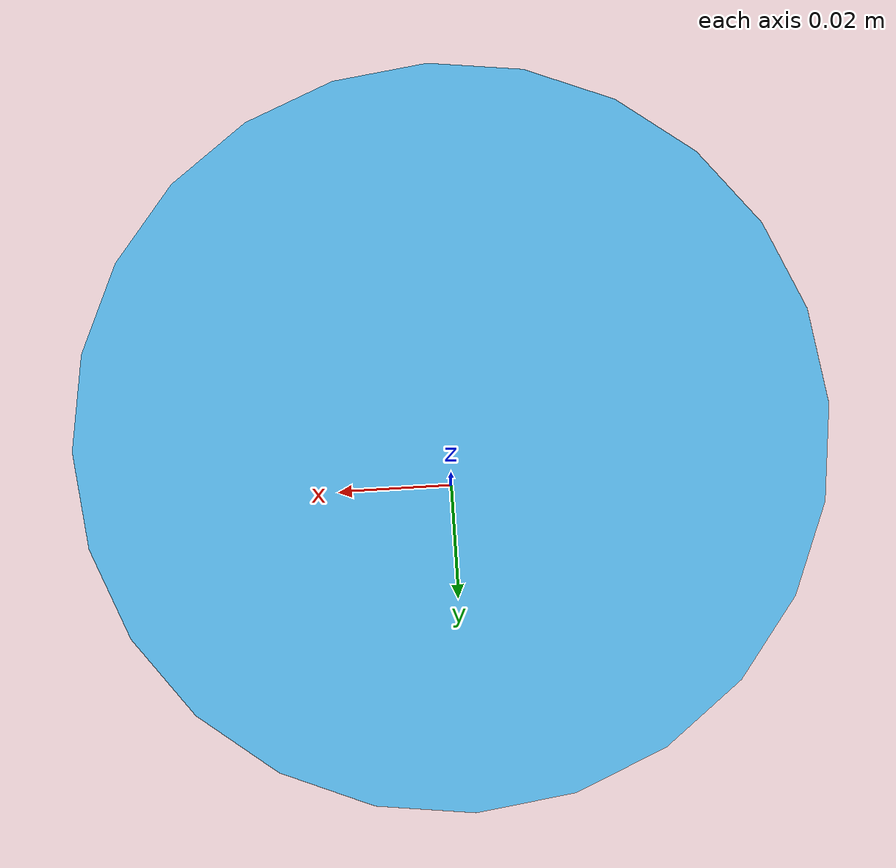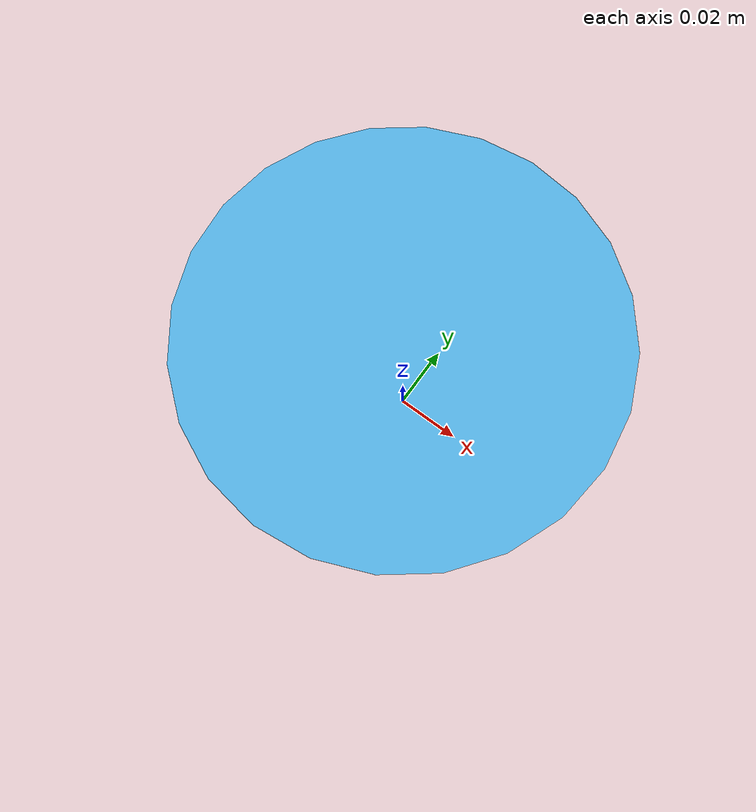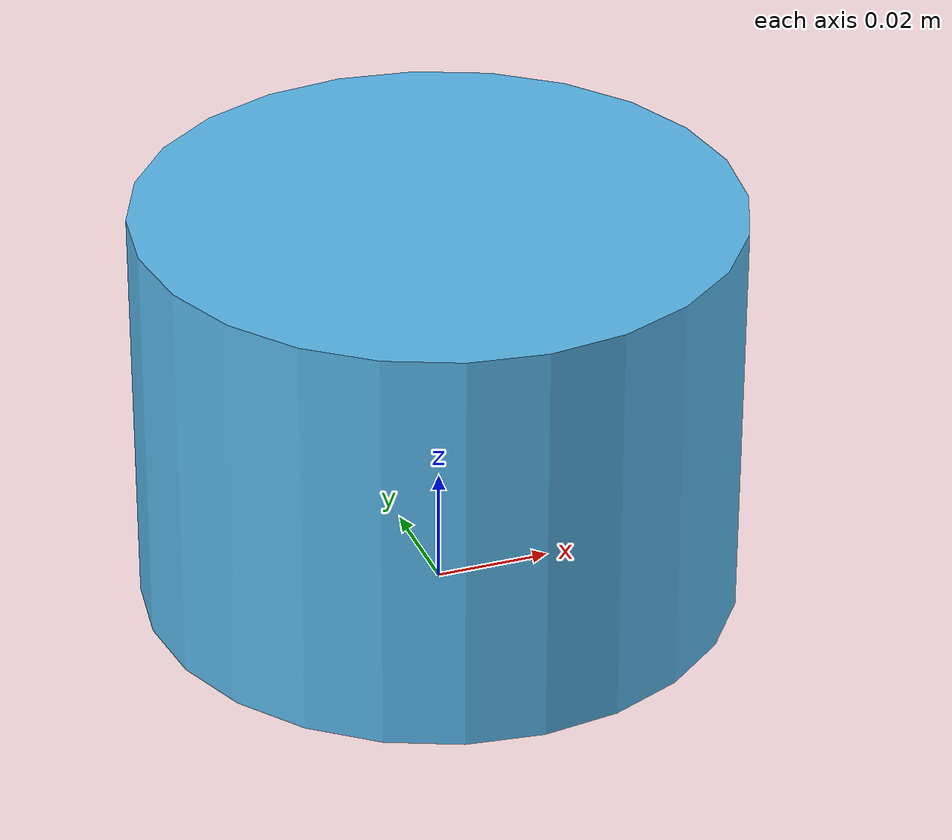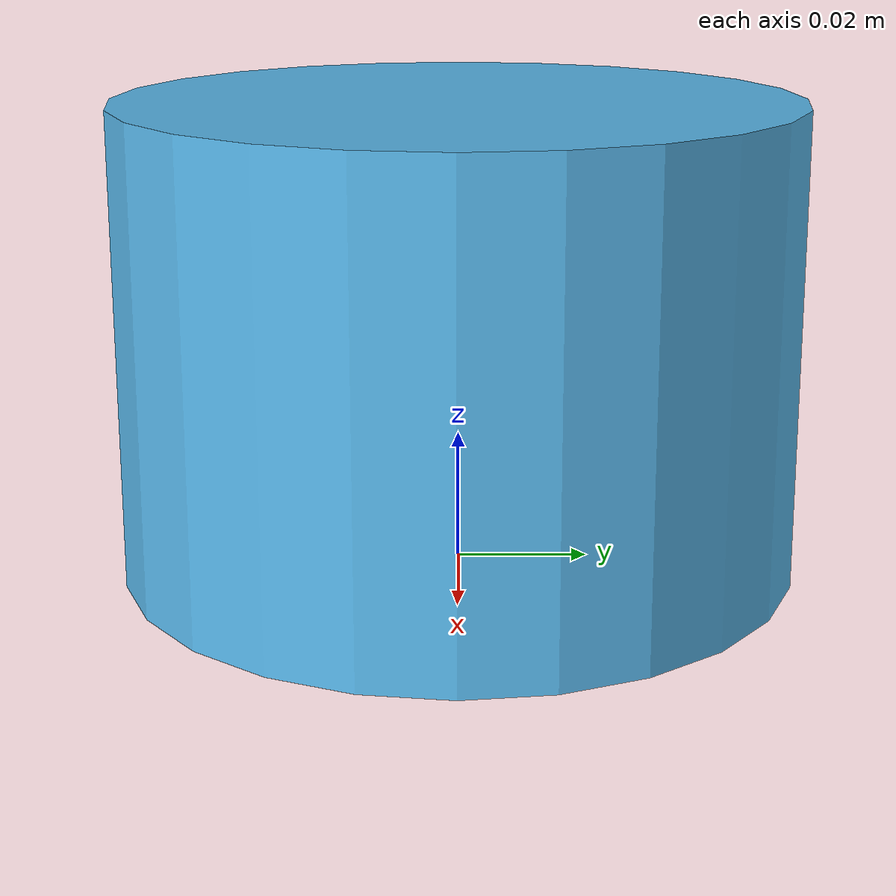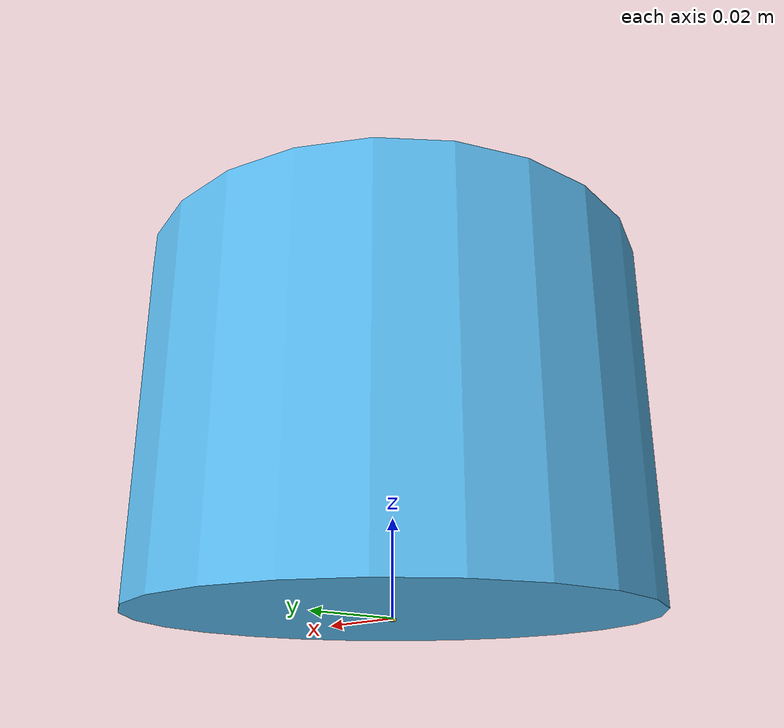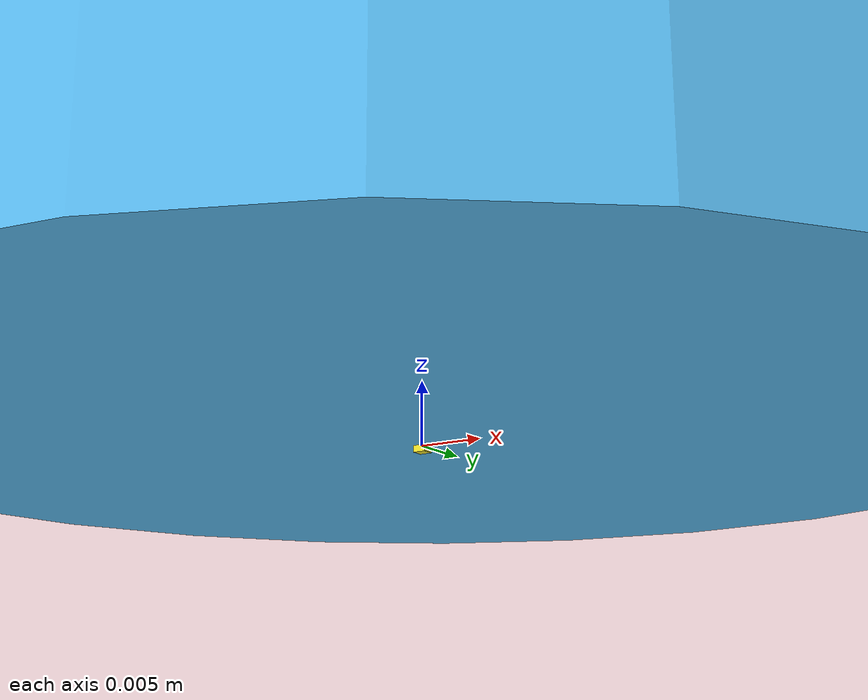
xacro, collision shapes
<?xml version="1.0"?>
<robot xmlns:xacro="http://www.ros.org/wiki/xacro" name="example">

  <link name="lidar" />

  <xacro:include filename="$(find velodyne_description)/urdf/VLP-16.urdf.xacro"/>
  <xacro:include filename="$(find vehicle_simulator)/urdf/imu.xacro" />
  <xacro:VLP-16 parent="lidar" name="velodyne" topic="/velodyne_points" hz="6.3" samples="350" min_range="0.1">
    <origin xyz="0 0 0" rpy="0 0 0" />
  </xacro:VLP-16>

  <xacro:imu parent_prefix="lidar" frame_prefix="imu">
      <origin xyz="0.0 0 0.0" rpy="0 0 0"/>
  </xacro:imu>
</robot>

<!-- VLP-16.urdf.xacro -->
<robot xmlns:xacro="http://www.ros.org/wiki/xacro" name="VLP-16">
  <xacro:property name="M_PI" value="3.1415926535897931" />
  <xacro:macro name="VLP-16" params="*origin is_sim:=true parent:=base_link name:=velodyne tf_prefix:='' topic:=/velodyne_points organize_cloud:=false hz:=10 lasers:=16 samples:=1875 collision_range:=0.3 min_range:=0.0 max_range:=100.0 noise:=0.008 min_angle:=-${M_PI} max_angle:=${M_PI} gpu:=false">

    <joint name="${name}_base_mount_joint" type="fixed">
      <xacro:insert_block name="origin" />
      <parent link="${parent}"/>
      <child link="${name}_base_link"/>
    </joint>

    <link name="${name}_base_link">
      <inertial>
        <mass value="0.83"/>
        <origin xyz="0 0 0.03585"/>
        <inertia ixx="${(0.83 * (3.0*0.0516*0.0516 + 0.0717*0.0717)) / 12.0}" ixy="0" ixz="0"
          iyy="${(0.83 * (3.0*0.0516*0.0516 + 0.0717*0.0717)) / 12.0}" iyz="0"
          izz="${0.5 * 0.83 * (0.0516*0.0516)}"/>
      </inertial>
      <visual>
        <geometry>
          <mesh filename="package://velodyne_description/meshes/VLP16_base_1.dae" />
        </geometry>
      </visual>
      <visual>
        <geometry>
          <mesh filename="package://velodyne_description/meshes/VLP16_base_2.dae" />
        </geometry>
      </visual>
      <collision>
        <origin rpy="0 0 0" xyz="0 0 0.03585"/>
        <geometry>
          <cylinder radius="0.0516" length="0.0717"/>
        </geometry>
      </collision>
    </link>

    <joint name="${name}_base_scan_joint" type="fixed" >
      <origin xyz="0 0 0.0377" rpy="0 0 0" />
      <parent link="${name}_base_link" />
      <child link="${name}"/>
    </joint>

    <link name="${name}">
      <inertial>
        <mass value="0.01"/>
        <origin xyz="0 0 0"/>
        <inertia ixx="1e-7" ixy="0" ixz="0" iyy="1e-7" iyz="0" izz="1e-7"/>
      </inertial>
      <visual>
        <origin xyz="0 0 -0.0377" />
        <geometry>
          <mesh filename="package://velodyne_description/meshes/VLP16_scan.dae" />
        </geometry>
      </visual>
      <collision>
        <geometry>
          <sphere radius="0"/>
        </geometry>
      </collision>
    </link>

    <!-- Gazebo requires the velodyne_gazebo_plugins package -->
    <xacro:if value="${is_sim}">
        <gazebo reference="${name}">
            <xacro:if value="${gpu}">
                <sensor type="gpu_ray" name="${name}-VLP16">
                <pose>0 0 0 0 0 0</pose>
                <visualize>false</visualize>
                <update_rate>${hz}</update_rate>
                <ray>
                    <scan>
                    <horizontal>
                        <samples>${samples}</samples>
                        <resolution>1</resolution>
                        <min_angle>${min_angle}</min_angle>
                        <max_angle>${max_angle}</max_angle>
                    </horizontal>
                    <vertical>
                        <samples>${lasers}</samples>
                        <resolution>1</resolution>
                        <min_angle>-${15.0*M_PI/180.0}</min_angle>
                        <max_angle> ${15.0*M_PI/180.0}</max_angle>
                    </vertical>
                    </scan>
                    <range>
                    <min>${collision_range}</min>
                    <max>${max_range+1}</max>
                    <resolution>0.001</resolution>
                    </range>
                    <noise>
                    <type>gaussian</type>
                    <mean>0.0</mean>
                    <stddev>0.0</stddev>
                    </noise>
                </ray>
                <plugin name="gazebo_ros_laser_controller" filename="libgazebo_ros_velodyne_laser.so">
                    <ros>
                    <namespace>/${name}</namespace>
                    <remapping>~/out:=${topic}</remapping>
                    </ros>
                    <tf_prefix>${tf_prefix}</tf_prefix>
                    <frame_name>${name}</frame_name>
                    <organize_cloud>${organize_cloud}</organize_cloud>
                    <min_range>${min_range}</min_range>
                    <max_range>${max_range}</max_range>
                    <gaussian_noise>${noise}</gaussian_noise>
                </plugin>
                </sensor>
            </xacro:if>
            <xacro:unless value="${gpu}">
                <sensor type="ray" name="${name}-VLP16">
                <pose>0 0 0 0 0 0</pose>
                <visualize>false</visualize>
                <update_rate>${hz}</update_rate>
                <ray>
                    <scan>
                    <horizontal>
                        <samples>${samples}</samples>
                        <resolution>1</resolution>
                        <min_angle>${min_angle}</min_angle>
                        <max_angle>${max_angle}</max_angle>
                    </horizontal>
                    <vertical>
                        <samples>${lasers}</samples>
                        <resolution>1</resolution>
                        <min_angle>-${15.0*M_PI/180.0}</min_angle>
                        <max_angle> ${15.0*M_PI/180.0}</max_angle>
                    </vertical>
                    </scan>
                    <range>
                    <min>${collision_range}</min>
                    <max>${max_range+1}</max>
                    <resolution>0.001</resolution>
                    </range>
                    <noise>
                    <type>gaussian</type>
                    <mean>0.0</mean>
                    <stddev>0.0</stddev>
                    </noise>
                </ray>
                <plugin name="gazebo_ros_laser_controller" filename="libgazebo_ros_velodyne_laser.so">
                    <ros>
                    <namespace>/${name}</namespace>
                    <remapping>~/out:=${topic}</remapping>
                    </ros>
                    <tf_prefix>${tf_prefix}</tf_prefix>
                    <frame_name>${name}</frame_name>
                    <organize_cloud>${organize_cloud}</organize_cloud>
                    <min_range>${min_range}</min_range>
                    <max_range>${max_range}</max_range>
                    <gaussian_noise>${noise}</gaussian_noise>
                </plugin>
                </sensor>
            </xacro:unless>
        </gazebo>
    </xacro:if>

  </xacro:macro>
</robot>

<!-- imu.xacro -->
<robot xmlns:xacro="http://www.ros.org/wiki/xacro" >
    <xacro:macro name="imu" params="parent_prefix frame_prefix  *joint_pose">
        <link name='${frame_prefix}_link'>
            <pose>0 0 0 0 0 0</pose>
            <inertial>
                <mass value="0.001"/>
                <origin xyz="0.0 0 0" rpy="0 0 0"/>
                <inertia
                    ixx="1e-7" ixy="0" ixz="0"
                    iyy="1e-7" iyz="0"
                    izz="1e-7"
                />
            </inertial>
            <visual name='imu_visual'>
                <origin xyz="0 0 0" rpy="0 0 0"/>
                <geometry>
                    <box size="0.001 0.001 0.001"/>
                </geometry>
                <material name='imu_material'>
                    <ambient>0.1 0.1 0.1 1</ambient>
                    <diffuse>0.1 0.1 0.2 1</diffuse>
                    <specular>0 0 0 0</specular>
                    <emissive>0 0 0 1</emissive>
                </material>
            </visual>
            <collision name='imu_collision'>
                <origin xyz="0 0 0" rpy="0 0 0"/>
                <geometry>
                    <box size="0.001 0.001 0.001"/>
                </geometry>
            </collision>
        </link>
        <joint type="fixed" name="imu_joint">
            <xacro:insert_block name="joint_pose"/>
            <parent link="${parent_prefix}"/>
            <child link="${frame_prefix}_link"/>

        </joint>
        <gazebo reference="${frame_prefix}_link">
            <material>Gazebo/Yellow</material>
        </gazebo>

    <gazebo reference="imu_link">
    <gravity>true</gravity>
    <sensor name="twr_imu" type="imu">
      <always_on>true</always_on>
      <update_rate>200</update_rate>
      <visualize>true</visualize>
      <imu>
        <orientation>
          <x>
            <noise type="gaussian">
              <mean>0.0</mean>
              <stddev>2e-3</stddev>
            </noise>
          </x>
          <y>
            <noise type="gaussian">
              <mean>0.0</mean>
              <stddev>2e-3</stddev>
            </noise>
          </y>
          <z>
            <noise type="gaussian">
              <mean>0.0</mean>
              <stddev>2e-3</stddev>
            </noise>
          </z>
        </orientation>
        <angular_velocity>
          <x>
            <noise type="gaussian">
              <mean>0.0</mean>
              <stddev>2e-2</stddev>
            </noise>
          </x>
          <y>
            <noise type="gaussian">
              <mean>0.0</mean>
              <stddev>2e-2</stddev>
            </noise>
          </y>
          <z>
            <noise type="gaussian">
              <mean>0.0</mean>
              <stddev>2e-2</stddev>
            </noise>
          </z>
        </angular_velocity>
        <linear_acceleration>
          <x>
            <noise type="gaussian">
              <mean>0.0</mean>
              <stddev>1.7e-3</stddev>
            </noise>
          </x>
          <y>
            <noise type="gaussian">
              <mean>0.0</mean>
              <stddev>1.7e-3</stddev>
            </noise>
          </y>
          <z>
            <noise type="gaussian">
              <mean>0.0</mean>
              <stddev>1.7e-3</stddev>
            </noise>
          </z>
        </linear_acceleration>
      </imu>
      <plugin name="two_wheeled_robot_imu" filename="libgazebo_ros_imu_sensor.so">
            <initial_orientation_as_reference>false</initial_orientation_as_reference>
                <frame_name>imu_link</frame_name>
                <ros>
                    <namespace>/imu</namespace>
                    <remapping>~/out:=data</remapping>
                </ros>
            </plugin>
            </sensor>
      </gazebo>
    </xacro:macro>
</robot>
